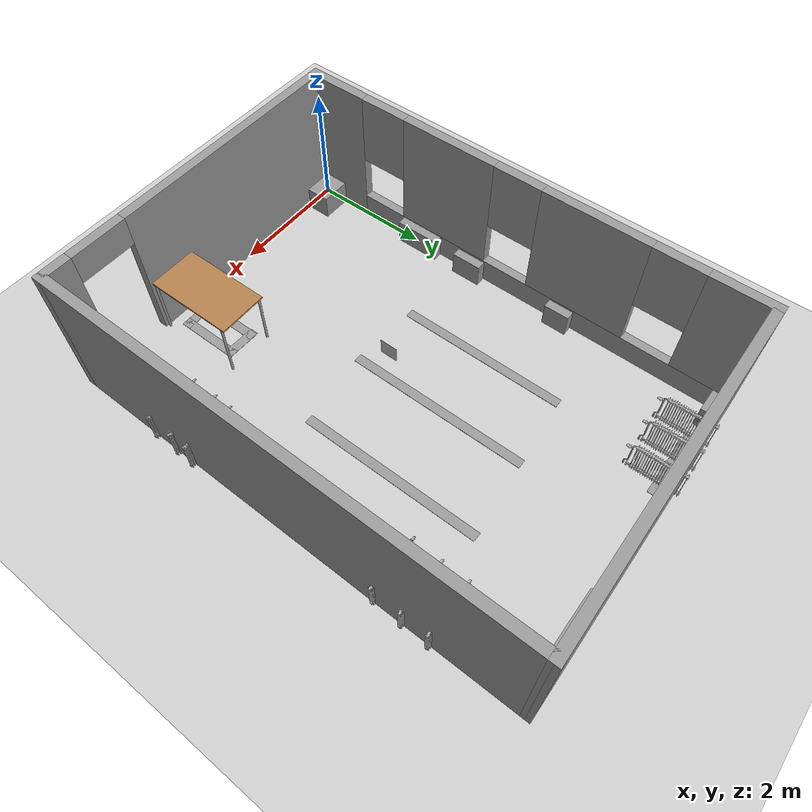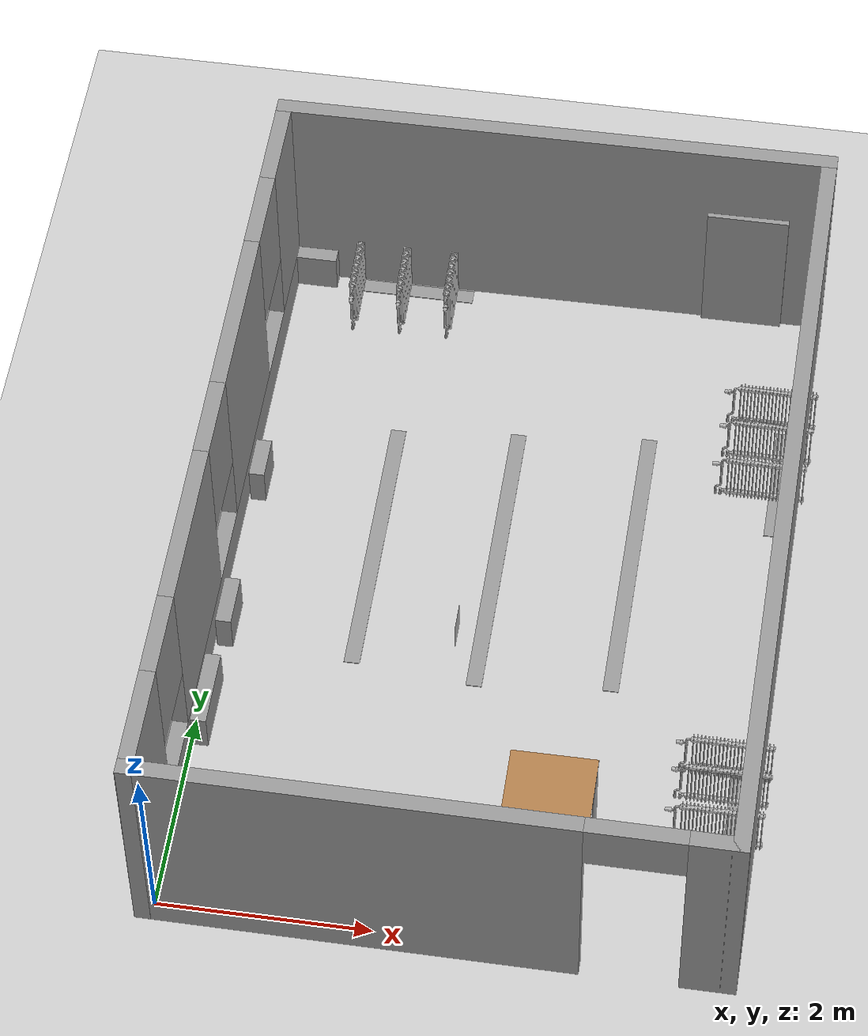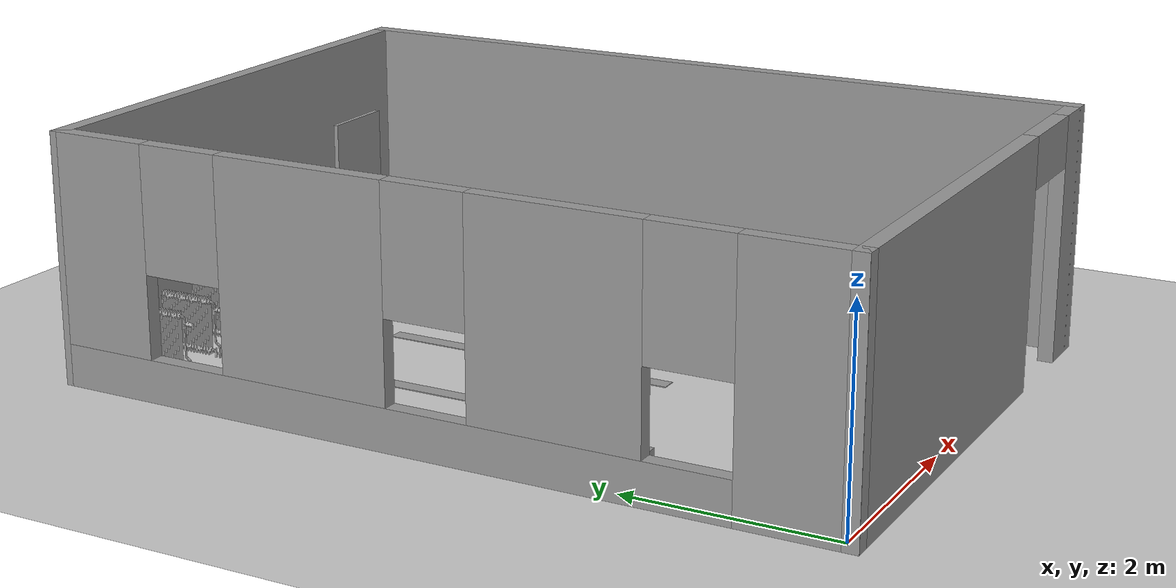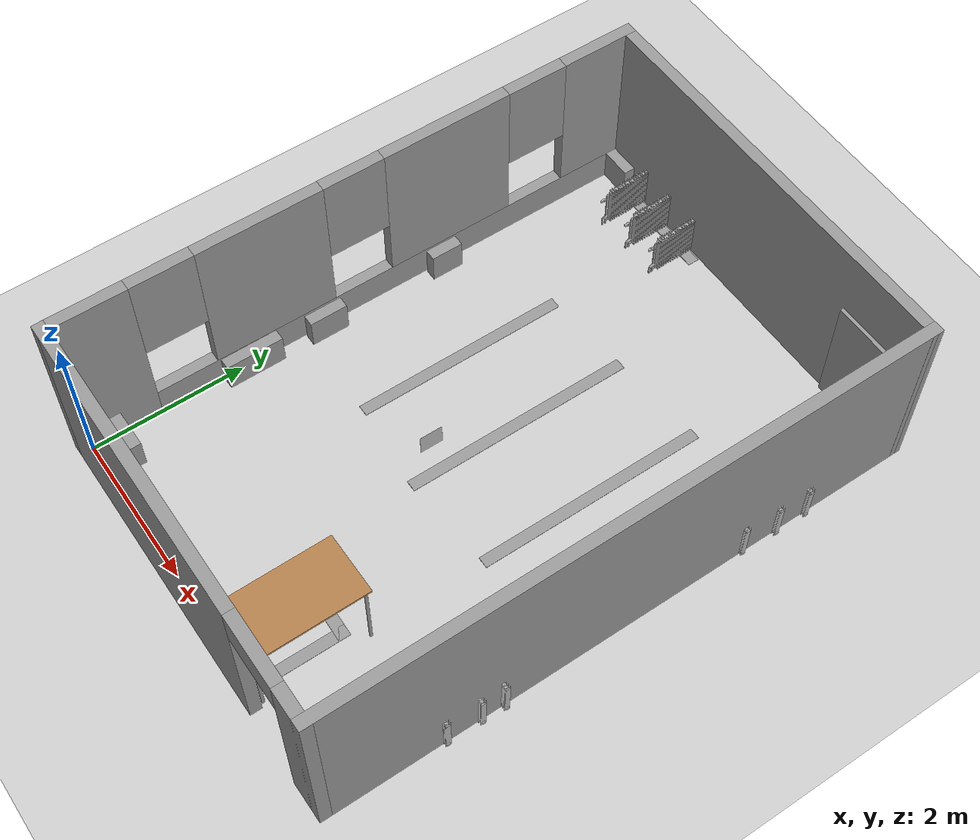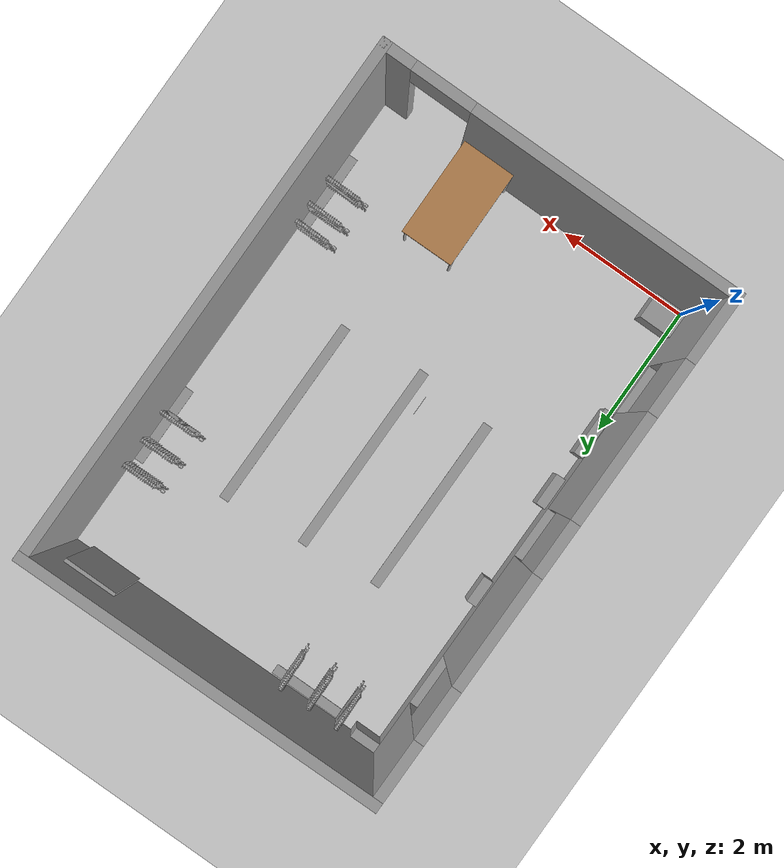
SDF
<sdf version="1.7">
 <world name="default">
  <light name="sun" type="directional">
   <pose>0 0 10 0 -0 0</pose>
   <diffuse>0.8 0.8 0.8 1</diffuse>
   <specular>0.2 0.2 0.2 1</specular>
   <attenuation>
    <range>1000</range>
    <constant>0.9</constant>
    <linear>0.01</linear>
    <quadratic>0.001</quadratic>
   </attenuation>
   <direction>-0.5 0.1 -0.9</direction>
   <spot><inner_angle>0</inner_angle><outer_angle>0</outer_angle><falloff>0</falloff></spot>
  </light>
  <model name="ground_plane">
   <static>1</static>
   <link name="link">
    <collision name="collision">
     <geometry><plane><normal>0 0 1</normal><size>100 100</size></plane></geometry>
     <surface>
      <contact><collide_bitmask>65535</collide_bitmask></contact>
      <friction><ode><mu>100</mu><mu2>50</mu2></ode></friction>
     </surface>
    </collision>
    <visual name="visual">
     <cast_shadows>0</cast_shadows>
     <geometry><plane><normal>0 0 1</normal><size>100 100</size></plane></geometry>
     <material>
      <script><uri>file://media/materials/scripts/gazebo.material</uri><name>Gazebo/Grey</name></script>
     </material>
    </visual>
   </link>
  </model>
  <gravity>0 0 -9.8</gravity>
  <magnetic_field>6e-06 2.3e-05 -4.2e-05</magnetic_field>
  <atmosphere type="adiabatic"/>
  <physics type="ode">
   <max_step_size>0.001</max_step_size>
   <real_time_factor>1</real_time_factor>
   <real_time_update_rate>1000</real_time_update_rate>
  </physics>
  <scene><ambient>0.4 0.4 0.4 1</ambient><background>0.7 0.7 0.7 1</background><shadows>1</shadows></scene>
  <spherical_coordinates>
   <surface_model>EARTH_WGS84</surface_model>
   <latitude_deg>0</latitude_deg>
   <longitude_deg>0</longitude_deg>
   <elevation>0</elevation>
   <heading_deg>0</heading_deg>
  </spherical_coordinates>
  <model name="table">
   <static>1</static>
   <link name="link">
    <collision name="surface">
     <pose>0 0 1 0 -0 0</pose>
     <geometry><box><size>1.5 0.8 0.03</size></box></geometry>
     <surface><friction><ode><mu>0.6</mu><mu2>0.6</mu2></ode></friction></surface>
    </collision>
    <visual name="visual1">
     <pose>0 0 1 0 -0 0</pose>
     <geometry><box><size>1.5 0.8 0.03</size></box></geometry>
     <material>
      <script><uri>file://media/materials/scripts/gazebo.material</uri><name>Gazebo/Wood</name></script>
     </material>
    </visual>
    <collision name="front_left_leg">
     <pose>0.68 0.38 0.5 0 -0 0</pose>
     <geometry><cylinder><radius>0.02</radius><length>1</length></cylinder></geometry>
    </collision>
    <visual name="front_left_leg">
     <pose>0.68 0.38 0.5 0 -0 0</pose>
     <geometry><cylinder><radius>0.02</radius><length>1</length></cylinder></geometry>
     <material>
      <script><uri>file://media/materials/scripts/gazebo.material</uri><name>Gazebo/Grey</name></script>
     </material>
    </visual>
    <collision name="front_right_leg">
     <pose>0.68 -0.38 0.5 0 -0 0</pose>
     <geometry><cylinder><radius>0.02</radius><length>1</length></cylinder></geometry>
    </collision>
    <visual name="front_right_leg">
     <pose>0.68 -0.38 0.5 0 -0 0</pose>
     <geometry><cylinder><radius>0.02</radius><length>1</length></cylinder></geometry>
     <material>
      <script><uri>file://media/materials/scripts/gazebo.material</uri><name>Gazebo/Grey</name></script>
     </material>
    </visual>
    <collision name="back_right_leg">
     <pose>-0.68 -0.38 0.5 0 -0 0</pose>
     <geometry><cylinder><radius>0.02</radius><length>1</length></cylinder></geometry>
    </collision>
    <visual name="back_right_leg">
     <pose>-0.68 -0.38 0.5 0 -0 0</pose>
     <geometry><cylinder><radius>0.02</radius><length>1</length></cylinder></geometry>
     <material>
      <script><uri>file://media/materials/scripts/gazebo.material</uri><name>Gazebo/Grey</name></script>
     </material>
    </visual>
    <collision name="back_left_leg">
     <pose>-0.68 0.38 0.5 0 -0 0</pose>
     <geometry><cylinder><radius>0.02</radius><length>1</length></cylinder></geometry>
    </collision>
    <visual name="back_left_leg">
     <pose>-0.68 0.38 0.5 0 -0 0</pose>
     <geometry><cylinder><radius>0.02</radius><length>1</length></cylinder></geometry>
     <material>
      <script><uri>file://media/materials/scripts/gazebo.material</uri><name>Gazebo/Grey</name></script>
     </material>
    </visual>
   </link>
   <pose>3.44291 0.706995 0 0 0 -1.56489</pose>
  </model>
  <model name="CastIronRadiator">
   <link name="link">
    <inertial>
     <inertia>
      <ixx>8.794</ixx>
      <ixy>-6.04e-06</ixy>
      <ixz>-0.00027907</ixz>
      <iyy>6.32668</iyy>
      <iyz>-3.26e-06</iyz>
      <izz>3.17141</izz>
     </inertia>
     <mass>145.789</mass>
    </inertial>
    <visual name="radiator_visual">
     <geometry>
      <mesh>
       <uri>https://fuel.ignitionrobotics.org/1.0/alexssom/models/cast iron radiator/1/files/meshes/radiator.dae</uri>
      </mesh>
     </geometry>
     <plugin name="ignition::gazebo::systems::Thermal" filename="ignition-gazebo-thermal-system">
      <temperature>325.0</temperature>
     </plugin>
     <material><shader type="pixel"/></material>
    </visual>
    <collision name="radiator_collision">
     <geometry>
      <mesh>
       <uri>/home/johnerzz/.ignition/fuel/fuel.ignitionrobotics.org/alexssom/models/cast iron radiator/1/meshes/collision.stl</uri>
       <scale>1 1 1</scale>
      </mesh>
     </geometry>
     <surface>
      <friction>
       <ode><mu>1</mu><mu2>1</mu2><fdir1>0 0 0</fdir1><slip1>0</slip1><slip2>0</slip2></ode>
       <torsional>
        <coefficient>1</coefficient>
        <patch_radius>0</patch_radius>
        <surface_radius>0</surface_radius>
        <use_patch_radius>1</use_patch_radius>
        <ode><slip>0</slip></ode>
       </torsional>
      </friction>
      <bounce><restitution_coefficient>0</restitution_coefficient><threshold>1e+06</threshold></bounce>
      <contact>
       <collide_without_contact>0</collide_without_contact>
       <collide_without_contact_bitmask>1</collide_without_contact_bitmask>
       <collide_bitmask>1</collide_bitmask>
       <ode>
        <soft_cfm>0</soft_cfm>
        <soft_erp>0.2</soft_erp>
        <kp>1e+13</kp>
        <kd>1</kd>
        <max_vel>0.01</max_vel>
        <min_depth>0</min_depth>
       </ode>
       <bullet>
        <split_impulse>1</split_impulse>
        <split_impulse_penetration_threshold>-0.01</split_impulse_penetration_threshold>
        <soft_cfm>0</soft_cfm>
        <soft_erp>0.2</soft_erp>
        <kp>1e+13</kp>
        <kd>1</kd>
       </bullet>
      </contact>
     </surface>
    </collision>
   </link>
   <static>1</static>
   <pose>4.99022 6.22706 0 0 -0 0</pose>
  </model>
  <model name="CastIronRadiator_0">
   <link name="link">
    <inertial>
     <inertia>
      <ixx>8.794</ixx>
      <ixy>-6.04e-06</ixy>
      <ixz>-0.00027907</ixz>
      <iyy>6.32668</iyy>
      <iyz>-3.26e-06</iyz>
      <izz>3.17141</izz>
     </inertia>
     <mass>145.789</mass>
    </inertial>
    <visual name="radiator_visual">
     <geometry>
      <mesh>
       <uri>https://fuel.ignitionrobotics.org/1.0/alexssom/models/cast iron radiator/1/files/meshes/radiator.dae</uri>
      </mesh>
     </geometry>
     <plugin name="ignition::gazebo::systems::Thermal" filename="ignition-gazebo-thermal-system">
      <temperature>325.0</temperature>
     </plugin>
     <material><shader type="pixel"/></material>
    </visual>
    <collision name="radiator_collision">
     <geometry>
      <mesh>
       <uri>/home/johnerzz/.ignition/fuel/fuel.ignitionrobotics.org/alexssom/models/cast iron radiator/1/meshes/collision.stl</uri>
       <scale>1 1 1</scale>
      </mesh>
     </geometry>
     <surface>
      <friction>
       <ode><mu>1</mu><mu2>1</mu2><fdir1>0 0 0</fdir1><slip1>0</slip1><slip2>0</slip2></ode>
       <torsional>
        <coefficient>1</coefficient>
        <patch_radius>0</patch_radius>
        <surface_radius>0</surface_radius>
        <use_patch_radius>1</use_patch_radius>
        <ode><slip>0</slip></ode>
       </torsional>
      </friction>
      <bounce><restitution_coefficient>0</restitution_coefficient><threshold>1e+06</threshold></bounce>
      <contact>
       <collide_without_contact>0</collide_without_contact>
       <collide_without_contact_bitmask>1</collide_without_contact_bitmask>
       <collide_bitmask>1</collide_bitmask>
       <ode>
        <soft_cfm>0</soft_cfm>
        <soft_erp>0.2</soft_erp>
        <kp>1e+13</kp>
        <kd>1</kd>
        <max_vel>0.01</max_vel>
        <min_depth>0</min_depth>
       </ode>
       <bullet>
        <split_impulse>1</split_impulse>
        <split_impulse_penetration_threshold>-0.01</split_impulse_penetration_threshold>
        <soft_cfm>0</soft_cfm>
        <soft_erp>0.2</soft_erp>
        <kp>1e+13</kp>
        <kd>1</kd>
       </bullet>
      </contact>
     </surface>
    </collision>
   </link>
   <static>1</static>
   <pose>4.98716 5.80395 0 0 -0 0</pose>
  </model>
  <model name="CastIronRadiator_1">
   <link name="link">
    <inertial>
     <inertia>
      <ixx>8.794</ixx>
      <ixy>-6.04e-06</ixy>
      <ixz>-0.00027907</ixz>
      <iyy>6.32668</iyy>
      <iyz>-3.26e-06</iyz>
      <izz>3.17141</izz>
     </inertia>
     <mass>145.789</mass>
    </inertial>
    <visual name="radiator_visual">
     <geometry>
      <mesh>
       <uri>https://fuel.ignitionrobotics.org/1.0/alexssom/models/cast iron radiator/1/files/meshes/radiator.dae</uri>
      </mesh>
     </geometry>
     <plugin name="ignition::gazebo::systems::Thermal" filename="ignition-gazebo-thermal-system">
      <temperature>325.0</temperature>
     </plugin>
     <material><shader type="pixel"/></material>
    </visual>
    <collision name="radiator_collision">
     <geometry>
      <mesh>
       <uri>/home/johnerzz/.ignition/fuel/fuel.ignitionrobotics.org/alexssom/models/cast iron radiator/1/meshes/collision.stl</uri>
       <scale>1 1 1</scale>
      </mesh>
     </geometry>
     <surface>
      <friction>
       <ode><mu>1</mu><mu2>1</mu2><fdir1>0 0 0</fdir1><slip1>0</slip1><slip2>0</slip2></ode>
       <torsional>
        <coefficient>1</coefficient>
        <patch_radius>0</patch_radius>
        <surface_radius>0</surface_radius>
        <use_patch_radius>1</use_patch_radius>
        <ode><slip>0</slip></ode>
       </torsional>
      </friction>
      <bounce><restitution_coefficient>0</restitution_coefficient><threshold>1e+06</threshold></bounce>
      <contact>
       <collide_without_contact>0</collide_without_contact>
       <collide_without_contact_bitmask>1</collide_without_contact_bitmask>
       <collide_bitmask>1</collide_bitmask>
       <ode>
        <soft_cfm>0</soft_cfm>
        <soft_erp>0.2</soft_erp>
        <kp>1e+13</kp>
        <kd>1</kd>
        <max_vel>0.01</max_vel>
        <min_depth>0</min_depth>
       </ode>
       <bullet>
        <split_impulse>1</split_impulse>
        <split_impulse_penetration_threshold>-0.01</split_impulse_penetration_threshold>
        <soft_cfm>0</soft_cfm>
        <soft_erp>0.2</soft_erp>
        <kp>1e+13</kp>
        <kd>1</kd>
       </bullet>
      </contact>
     </surface>
    </collision>
   </link>
   <static>1</static>
   <pose>4.98698 1.3807 0 0 -0 0</pose>
  </model>
  <model name="CastIronRadiator_1_clone">
   <link name="link">
    <inertial>
     <inertia>
      <ixx>8.794</ixx>
      <ixy>-6.04e-06</ixy>
      <ixz>-0.00027907</ixz>
      <iyy>6.32668</iyy>
      <iyz>-3.26e-06</iyz>
      <izz>3.17141</izz>
     </inertia>
     <mass>145.789</mass>
    </inertial>
    <visual name="radiator_visual">
     <geometry>
      <mesh>
       <uri>https://fuel.ignitionrobotics.org/1.0/alexssom/models/cast iron radiator/1/files/meshes/radiator.dae</uri>
      </mesh>
     </geometry>
     <plugin name="ignition::gazebo::systems::Thermal" filename="ignition-gazebo-thermal-system">
      <temperature>325.0</temperature>
     </plugin>
     <material><shader type="pixel"/></material>
    </visual>
    <collision name="radiator_collision">
     <geometry>
      <mesh>
       <uri>/home/johnerzz/.ignition/fuel/fuel.ignitionrobotics.org/alexssom/models/cast iron radiator/1/meshes/collision.stl</uri>
       <scale>1 1 1</scale>
      </mesh>
     </geometry>
     <surface>
      <friction>
       <ode><mu>1</mu><mu2>1</mu2><fdir1>0 0 0</fdir1><slip1>0</slip1><slip2>0</slip2></ode>
       <torsional>
        <coefficient>1</coefficient>
        <patch_radius>0</patch_radius>
        <surface_radius>0</surface_radius>
        <use_patch_radius>1</use_patch_radius>
        <ode><slip>0</slip></ode>
       </torsional>
      </friction>
      <bounce><restitution_coefficient>0</restitution_coefficient><threshold>1e+06</threshold></bounce>
      <contact>
       <collide_without_contact>0</collide_without_contact>
       <collide_without_contact_bitmask>1</collide_without_contact_bitmask>
       <collide_bitmask>1</collide_bitmask>
       <ode>
        <soft_cfm>0</soft_cfm>
        <soft_erp>0.2</soft_erp>
        <kp>1e+13</kp>
        <kd>1</kd>
        <max_vel>0.01</max_vel>
        <min_depth>0</min_depth>
       </ode>
       <bullet>
        <split_impulse>1</split_impulse>
        <split_impulse_penetration_threshold>-0.01</split_impulse_penetration_threshold>
        <soft_cfm>0</soft_cfm>
        <soft_erp>0.2</soft_erp>
        <kp>1e+13</kp>
        <kd>1</kd>
       </bullet>
      </contact>
     </surface>
    </collision>
   </link>
   <static>1</static>
   <pose>4.99485 1.8146 0 0 -0 0</pose>
  </model>
  <model name="CastIronRadiator_1_clone_0">
   <link name="link">
    <inertial>
     <inertia>
      <ixx>8.794</ixx>
      <ixy>-6.04e-06</ixy>
      <ixz>-0.00027907</ixz>
      <iyy>6.32668</iyy>
      <iyz>-3.26e-06</iyz>
      <izz>3.17141</izz>
     </inertia>
     <mass>145.789</mass>
    </inertial>
    <visual name="radiator_visual">
     <geometry>
      <mesh>
       <uri>https://fuel.ignitionrobotics.org/1.0/alexssom/models/cast iron radiator/1/files/meshes/radiator.dae</uri>
      </mesh>
     </geometry>
     <plugin name="ignition::gazebo::systems::Thermal" filename="ignition-gazebo-thermal-system">
      <temperature>325.0</temperature>
     </plugin>
     <material><shader type="pixel"/></material>
    </visual>
    <collision name="radiator_collision">
     <geometry>
      <mesh>
       <uri>/home/johnerzz/.ignition/fuel/fuel.ignitionrobotics.org/alexssom/models/cast iron radiator/1/meshes/collision.stl</uri>
       <scale>1 1 1</scale>
      </mesh>
     </geometry>
     <surface>
      <friction>
       <ode><mu>1</mu><mu2>1</mu2><fdir1>0 0 0</fdir1><slip1>0</slip1><slip2>0</slip2></ode>
       <torsional>
        <coefficient>1</coefficient>
        <patch_radius>0</patch_radius>
        <surface_radius>0</surface_radius>
        <use_patch_radius>1</use_patch_radius>
        <ode><slip>0</slip></ode>
       </torsional>
      </friction>
      <bounce><restitution_coefficient>0</restitution_coefficient><threshold>1e+06</threshold></bounce>
      <contact>
       <collide_without_contact>0</collide_without_contact>
       <collide_without_contact_bitmask>1</collide_without_contact_bitmask>
       <collide_bitmask>1</collide_bitmask>
       <ode>
        <soft_cfm>0</soft_cfm>
        <soft_erp>0.2</soft_erp>
        <kp>1e+13</kp>
        <kd>1</kd>
        <max_vel>0.01</max_vel>
        <min_depth>0</min_depth>
       </ode>
       <bullet>
        <split_impulse>1</split_impulse>
        <split_impulse_penetration_threshold>-0.01</split_impulse_penetration_threshold>
        <soft_cfm>0</soft_cfm>
        <soft_erp>0.2</soft_erp>
        <kp>1e+13</kp>
        <kd>1</kd>
       </bullet>
      </contact>
     </surface>
    </collision>
   </link>
   <static>1</static>
   <pose>5.00274 2.1137 0 0 -0 0</pose>
  </model>
  <model name="CastIronRadiator_1_clone_1">
   <link name="link">
    <inertial>
     <inertia>
      <ixx>8.794</ixx>
      <ixy>-6.04e-06</ixy>
      <ixz>-0.00027907</ixz>
      <iyy>6.32668</iyy>
      <iyz>-3.26e-06</iyz>
      <izz>3.17141</izz>
     </inertia>
     <mass>145.789</mass>
    </inertial>
    <visual name="radiator_visual">
     <geometry>
      <mesh>
       <uri>https://fuel.ignitionrobotics.org/1.0/alexssom/models/cast iron radiator/1/files/meshes/radiator.dae</uri>
      </mesh>
     </geometry>
     <plugin name="ignition::gazebo::systems::Thermal" filename="ignition-gazebo-thermal-system">
      <temperature>325.0</temperature>
     </plugin>
     <material><shader type="pixel"/></material>
    </visual>
    <collision name="radiator_collision">
     <geometry>
      <mesh>
       <uri>/home/johnerzz/.ignition/fuel/fuel.ignitionrobotics.org/alexssom/models/cast iron radiator/1/meshes/collision.stl</uri>
       <scale>1 1 1</scale>
      </mesh>
     </geometry>
     <surface>
      <friction>
       <ode><mu>1</mu><mu2>1</mu2><fdir1>0 0 0</fdir1><slip1>0</slip1><slip2>0</slip2></ode>
       <torsional>
        <coefficient>1</coefficient>
        <patch_radius>0</patch_radius>
        <surface_radius>0</surface_radius>
        <use_patch_radius>1</use_patch_radius>
        <ode><slip>0</slip></ode>
       </torsional>
      </friction>
      <bounce><restitution_coefficient>0</restitution_coefficient><threshold>1e+06</threshold></bounce>
      <contact>
       <collide_without_contact>0</collide_without_contact>
       <collide_without_contact_bitmask>1</collide_without_contact_bitmask>
       <collide_bitmask>1</collide_bitmask>
       <ode>
        <soft_cfm>0</soft_cfm>
        <soft_erp>0.2</soft_erp>
        <kp>1e+13</kp>
        <kd>1</kd>
        <max_vel>0.01</max_vel>
        <min_depth>0</min_depth>
       </ode>
       <bullet>
        <split_impulse>1</split_impulse>
        <split_impulse_penetration_threshold>-0.01</split_impulse_penetration_threshold>
        <soft_cfm>0</soft_cfm>
        <soft_erp>0.2</soft_erp>
        <kp>1e+13</kp>
        <kd>1</kd>
       </bullet>
      </contact>
     </surface>
    </collision>
   </link>
   <static>1</static>
   <pose>4.96853 5.33792 0 0 -0 0</pose>
  </model>
  <model name="CastIronRadiator_1_clone_2">
   <link name="link">
    <inertial>
     <inertia>
      <ixx>8.794</ixx>
      <ixy>-6.04e-06</ixy>
      <ixz>-0.00027907</ixz>
      <iyy>6.32668</iyy>
      <iyz>-3.26e-06</iyz>
      <izz>3.17141</izz>
     </inertia>
     <mass>145.789</mass>
    </inertial>
    <visual name="radiator_visual">
     <geometry>
      <mesh>
       <uri>https://fuel.ignitionrobotics.org/1.0/alexssom/models/cast iron radiator/1/files/meshes/radiator.dae</uri>
      </mesh>
     </geometry>
     <plugin name="ignition::gazebo::systems::Thermal" filename="ignition-gazebo-thermal-system">
      <temperature>325.0</temperature>
     </plugin>
     <material><shader type="pixel"/></material>
    </visual>
    <collision name="radiator_collision">
     <geometry>
      <mesh>
       <uri>/home/johnerzz/.ignition/fuel/fuel.ignitionrobotics.org/alexssom/models/cast iron radiator/1/meshes/collision.stl</uri>
       <scale>1 1 1</scale>
      </mesh>
     </geometry>
     <surface>
      <friction>
       <ode><mu>1</mu><mu2>1</mu2><fdir1>0 0 0</fdir1><slip1>0</slip1><slip2>0</slip2></ode>
       <torsional>
        <coefficient>1</coefficient>
        <patch_radius>0</patch_radius>
        <surface_radius>0</surface_radius>
        <use_patch_radius>1</use_patch_radius>
        <ode><slip>0</slip></ode>
       </torsional>
      </friction>
      <bounce><restitution_coefficient>0</restitution_coefficient><threshold>1e+06</threshold></bounce>
      <contact>
       <collide_without_contact>0</collide_without_contact>
       <collide_without_contact_bitmask>1</collide_without_contact_bitmask>
       <collide_bitmask>1</collide_bitmask>
       <ode>
        <soft_cfm>0</soft_cfm>
        <soft_erp>0.2</soft_erp>
        <kp>1e+13</kp>
        <kd>1</kd>
        <max_vel>0.01</max_vel>
        <min_depth>0</min_depth>
       </ode>
       <bullet>
        <split_impulse>1</split_impulse>
        <split_impulse_penetration_threshold>-0.01</split_impulse_penetration_threshold>
        <soft_cfm>0</soft_cfm>
        <soft_erp>0.2</soft_erp>
        <kp>1e+13</kp>
        <kd>1</kd>
       </bullet>
      </contact>
     </surface>
    </collision>
   </link>
   <static>1</static>
   <pose>0.653102 7.32634 0 0 -0 1.58731</pose>
  </model>
  <model name="CastIronRadiator_1_clone_2_clone">
   <link name="link">
    <inertial>
     <inertia>
      <ixx>8.794</ixx>
      <ixy>-6.04e-06</ixy>
      <ixz>-0.00027907</ixz>
      <iyy>6.32668</iyy>
      <iyz>-3.26e-06</iyz>
      <izz>3.17141</izz>
     </inertia>
     <mass>145.789</mass>
    </inertial>
    <visual name="radiator_visual">
     <geometry>
      <mesh>
       <uri>https://fuel.ignitionrobotics.org/1.0/alexssom/models/cast iron radiator/1/files/meshes/radiator.dae</uri>
      </mesh>
     </geometry>
     <plugin name="ignition::gazebo::systems::Thermal" filename="ignition-gazebo-thermal-system">
      <temperature>325.0</temperature>
     </plugin>
     <material><shader type="pixel"/></material>
    </visual>
    <collision name="radiator_collision">
     <geometry>
      <mesh>
       <uri>/home/johnerzz/.ignition/fuel/fuel.ignitionrobotics.org/alexssom/models/cast iron radiator/1/meshes/collision.stl</uri>
       <scale>1 1 1</scale>
      </mesh>
     </geometry>
     <surface>
      <friction>
       <ode><mu>1</mu><mu2>1</mu2><fdir1>0 0 0</fdir1><slip1>0</slip1><slip2>0</slip2></ode>
       <torsional>
        <coefficient>1</coefficient>
        <patch_radius>0</patch_radius>
        <surface_radius>0</surface_radius>
        <use_patch_radius>1</use_patch_radius>
        <ode><slip>0</slip></ode>
       </torsional>
      </friction>
      <bounce><restitution_coefficient>0</restitution_coefficient><threshold>1e+06</threshold></bounce>
      <contact>
       <collide_without_contact>0</collide_without_contact>
       <collide_without_contact_bitmask>1</collide_without_contact_bitmask>
       <collide_bitmask>1</collide_bitmask>
       <ode>
        <soft_cfm>0</soft_cfm>
        <soft_erp>0.2</soft_erp>
        <kp>1e+13</kp>
        <kd>1</kd>
        <max_vel>0.01</max_vel>
        <min_depth>0</min_depth>
       </ode>
       <bullet>
        <split_impulse>1</split_impulse>
        <split_impulse_penetration_threshold>-0.01</split_impulse_penetration_threshold>
        <soft_cfm>0</soft_cfm>
        <soft_erp>0.2</soft_erp>
        <kp>1e+13</kp>
        <kd>1</kd>
       </bullet>
      </contact>
     </surface>
    </collision>
   </link>
   <static>1</static>
   <pose>1.12217 7.34336 0 0 -0 1.58731</pose>
  </model>
  <model name="CastIronRadiator_1_clone_2_clone_0">
   <link name="link">
    <inertial>
     <inertia>
      <ixx>8.794</ixx>
      <ixy>-6.04e-06</ixy>
      <ixz>-0.00027907</ixz>
      <iyy>6.32668</iyy>
      <iyz>-3.26e-06</iyz>
      <izz>3.17141</izz>
     </inertia>
     <mass>145.789</mass>
    </inertial>
    <visual name="radiator_visual">
     <geometry>
      <mesh>
       <uri>https://fuel.ignitionrobotics.org/1.0/alexssom/models/cast iron radiator/1/files/meshes/radiator.dae</uri>
      </mesh>
     </geometry>
     <plugin name="ignition::gazebo::systems::Thermal" filename="ignition-gazebo-thermal-system">
      <temperature>325.0</temperature>
     </plugin>
     <material><shader type="pixel"/></material>
    </visual>
    <collision name="radiator_collision">
     <geometry>
      <mesh>
       <uri>/home/johnerzz/.ignition/fuel/fuel.ignitionrobotics.org/alexssom/models/cast iron radiator/1/meshes/collision.stl</uri>
       <scale>1 1 1</scale>
      </mesh>
     </geometry>
     <surface>
      <friction>
       <ode><mu>1</mu><mu2>1</mu2><fdir1>0 0 0</fdir1><slip1>0</slip1><slip2>0</slip2></ode>
       <torsional>
        <coefficient>1</coefficient>
        <patch_radius>0</patch_radius>
        <surface_radius>0</surface_radius>
        <use_patch_radius>1</use_patch_radius>
        <ode><slip>0</slip></ode>
       </torsional>
      </friction>
      <bounce><restitution_coefficient>0</restitution_coefficient><threshold>1e+06</threshold></bounce>
      <contact>
       <collide_without_contact>0</collide_without_contact>
       <collide_without_contact_bitmask>1</collide_without_contact_bitmask>
       <collide_bitmask>1</collide_bitmask>
       <ode>
        <soft_cfm>0</soft_cfm>
        <soft_erp>0.2</soft_erp>
        <kp>1e+13</kp>
        <kd>1</kd>
        <max_vel>0.01</max_vel>
        <min_depth>0</min_depth>
       </ode>
       <bullet>
        <split_impulse>1</split_impulse>
        <split_impulse_penetration_threshold>-0.01</split_impulse_penetration_threshold>
        <soft_cfm>0</soft_cfm>
        <soft_erp>0.2</soft_erp>
        <kp>1e+13</kp>
        <kd>1</kd>
       </bullet>
      </contact>
     </surface>
    </collision>
   </link>
   <static>1</static>
   <pose>1.59606 7.34992 0 0 -0 1.58731</pose>
  </model>
  <model name="unit_box_clone_0_clone">
   <link name="link">
    <inertial>
     <mass>1</mass>
     <inertia>
      <ixx>0.166667</ixx>
      <ixy>0</ixy>
      <ixz>0</ixz>
      <iyy>0.166667</iyy>
      <iyz>0</iyz>
      <izz>0.166667</izz>
     </inertia>
    </inertial>
    <visual name="visual">
     <geometry><box><size>0.795223 0.175192 1.55483</size></box></geometry>
     <material>
      <script><name>Gazebo/Grey</name><uri>file://media/materials/scripts/gazebo.material</uri></script>
      <shader type="pixel"/>
     </material>
    </visual>
    <collision name="collision">
     <geometry><box><size>0.795223 0.175192 1.55483</size></box></geometry>
     <surface>
      <friction>
       <ode><mu>1</mu><mu2>1</mu2><fdir1>0 0 0</fdir1><slip1>0</slip1><slip2>0</slip2></ode>
       <torsional>
        <coefficient>1</coefficient>
        <patch_radius>0</patch_radius>
        <surface_radius>0</surface_radius>
        <use_patch_radius>1</use_patch_radius>
        <ode><slip>0</slip></ode>
       </torsional>
      </friction>
      <bounce><restitution_coefficient>0</restitution_coefficient><threshold>1e+06</threshold></bounce>
      <contact>
       <collide_without_contact>0</collide_without_contact>
       <collide_without_contact_bitmask>1</collide_without_contact_bitmask>
       <collide_bitmask>1</collide_bitmask>
       <ode>
        <soft_cfm>0</soft_cfm>
        <soft_erp>0.2</soft_erp>
        <kp>1e+13</kp>
        <kd>1</kd>
        <max_vel>0.01</max_vel>
        <min_depth>0</min_depth>
       </ode>
       <bullet>
        <split_impulse>1</split_impulse>
        <split_impulse_penetration_threshold>-0.01</split_impulse_penetration_threshold>
        <soft_cfm>0</soft_cfm>
        <soft_erp>0.2</soft_erp>
        <kp>1e+13</kp>
        <kd>1</kd>
       </bullet>
      </contact>
     </surface>
    </collision>
   </link>
   <static>1</static>
   <pose>4.49641 7.57954 0.783798 0 -0 0</pose>
  </model>
  <model name="Apriltag36_11_00000_78">
   <link name="main">
    <pose>2.28 3.2 0.318922 0 1.57079 0</pose>
    <visual name="main_Visual">
     <geometry><box><size>0.3 0.3 0.0001</size></box></geometry>
     <material>
      <script>
       <uri>model://materials/scripts/</uri>
       <uri>model://materials/textures/</uri>
       <name>Obj/Apriltag36_11_00000</name>
      </script>
     </material>
    </visual>
   </link>
   <static>1</static>
  </model>
  <model name="LabVineyard">
   <pose>2.57371 3.76723 -0.101342 0 -0 0</pose>
   <link name="Wall_25">
    <collision name="Wall_25_Collision">
     <geometry><box><size>5.4313 0.15 2.5</size></box></geometry>
     <pose>0 0 1.25 0 -0 0</pose>
    </collision>
    <visual name="Wall_25_Visual">
     <pose>0 0 1.25 0 -0 0</pose>
     <geometry><box><size>5.4313 0.15 2.5</size></box></geometry>
     <material>
      <script><uri>file://media/materials/scripts/gazebo.material</uri><name>Gazebo/Grey</name></script>
      <ambient>1 1 1 1</ambient>
     </material>
     <meta><layer>0</layer></meta>
    </visual>
    <pose>0.008426 3.8343 0 0 -0 0.008547</pose>
   </link>
   <link name="Wall_26">
    <collision name="Wall_26_Collision">
     <geometry><box><size>7.86391 0.15 2.5</size></box></geometry>
     <pose>0 0 1.25 0 -0 0</pose>
    </collision>
    <visual name="Wall_26_Visual">
     <pose>0 0 1.25 0 -0 0</pose>
     <geometry><box><size>7.86391 0.15 2.5</size></box></geometry>
     <material>
      <script><uri>file://media/materials/scripts/gazebo.material</uri><name>Gazebo/Grey</name></script>
      <ambient>1 1 1 1</ambient>
     </material>
     <meta><layer>0</layer></meta>
    </visual>
    <pose>2.6505 -0.000255 0 0 -0 -1.57041</pose>
   </link>
   <link name="Wall_27">
    <pose>-0 -3.85287 0 0 -0 3.1399</pose>
    <visual name="Wall_27_Visual_0">
     <pose>-2.46812 0 1.25 0 -0 0</pose>
     <geometry><box><size>0.518096 0.15 2.5</size></box></geometry>
     <material>
      <script><uri>file://media/materials/scripts/gazebo.material</uri><name>Gazebo/Grey</name></script>
      <ambient>1 1 1 1</ambient>
     </material>
     <meta><layer>0</layer></meta>
    </visual>
    <collision name="Wall_27_Collision_0">
     <geometry><box><size>0.518096 0.15 2.5</size></box></geometry>
     <pose>-2.46812 0 1.25 0 -0 0</pose>
    </collision>
    <visual name="Wall_27_Visual_1">
     <pose>0.709048 0 1.25 0 -0 0</pose>
     <geometry><box><size>4.03625 0.15 2.5</size></box></geometry>
     <material>
      <script><uri>file://media/materials/scripts/gazebo.material</uri><name>Gazebo/Grey</name></script>
      <ambient>1 1 1 1</ambient>
     </material>
     <meta><layer>0</layer></meta>
    </visual>
    <collision name="Wall_27_Collision_1">
     <geometry><box><size>4.03625 0.15 2.5</size></box></geometry>
     <pose>0.709048 0 1.25 0 -0 0</pose>
    </collision>
    <visual name="Wall_27_Visual_2">
     <pose>-1.75908 0 2.25 0 -0 0</pose>
     <geometry><box><size>0.9 0.15 0.5</size></box></geometry>
     <material>
      <script><uri>file://media/materials/scripts/gazebo.material</uri><name>Gazebo/Grey</name></script>
      <ambient>1 1 1 1</ambient>
     </material>
     <meta><layer>0</layer></meta>
    </visual>
    <collision name="Wall_27_Collision_2">
     <geometry><box><size>0.9 0.15 0.5</size></box></geometry>
     <pose>-1.75908 0 2.25 0 -0 0</pose>
    </collision>
   </link>
   <link name="Wall_28">
    <pose>-2.64208 -0.018324 0 0 -0 1.56821</pose>
    <visual name="Wall_28_Visual_0">
     <pose>-3.37054 0 1.25 0 -0 0</pose>
     <geometry><box><size>1.06919 0.15 2.5</size></box></geometry>
     <material>
      <script><uri>file://media/materials/scripts/gazebo.material</uri><name>Gazebo/Grey</name></script>
      <ambient>1 1 1 1</ambient>
     </material>
     <meta><layer>0</layer></meta>
    </visual>
    <collision name="Wall_28_Collision_0">
     <geometry><box><size>1.06919 0.15 2.5</size></box></geometry>
     <pose>-3.37054 0 1.25 0 -0 0</pose>
    </collision>
    <visual name="Wall_28_Visual_1">
     <pose>0.534596 0 0.25 0 -0 0</pose>
     <geometry><box><size>6.74108 0.15 0.5</size></box></geometry>
     <material>
      <script><uri>file://media/materials/scripts/gazebo.material</uri><name>Gazebo/Grey</name></script>
      <ambient>1 1 1 1</ambient>
     </material>
     <meta><layer>0</layer></meta>
    </visual>
    <collision name="Wall_28_Collision_1">
     <geometry><box><size>6.74108 0.15 0.5</size></box></geometry>
     <pose>0.534596 0 0.25 0 -0 0</pose>
    </collision>
    <visual name="Wall_28_Visual_2">
     <pose>-1.22283 0 1.5 0 -0 0</pose>
     <geometry><box><size>1.62623 0.15 2</size></box></geometry>
     <material>
      <script><uri>file://media/materials/scripts/gazebo.material</uri><name>Gazebo/Grey</name></script>
      <ambient>1 1 1 1</ambient>
     </material>
     <meta><layer>0</layer></meta>
    </visual>
    <collision name="Wall_28_Collision_2">
     <geometry><box><size>1.62623 0.15 2</size></box></geometry>
     <pose>-1.22283 0 1.5 0 -0 0</pose>
    </collision>
    <visual name="Wall_28_Visual_3">
     <pose>1.24285 0 1.5 0 -0 0</pose>
     <geometry><box><size>1.70513 0.15 2</size></box></geometry>
     <material>
      <script><uri>file://media/materials/scripts/gazebo.material</uri><name>Gazebo/Grey</name></script>
      <ambient>1 1 1 1</ambient>
     </material>
     <meta><layer>0</layer></meta>
    </visual>
    <collision name="Wall_28_Collision_3">
     <geometry><box><size>1.70513 0.15 2</size></box></geometry>
     <pose>1.24285 0 1.5 0 -0 0</pose>
    </collision>
    <visual name="Wall_28_Visual_4">
     <pose>3.40028 0 1.5 0 -0 0</pose>
     <geometry><box><size>1.00972 0.15 2</size></box></geometry>
     <material>
      <script><uri>file://media/materials/scripts/gazebo.material</uri><name>Gazebo/Grey</name></script>
      <ambient>1 1 1 1</ambient>
     </material>
     <meta><layer>0</layer></meta>
    </visual>
    <collision name="Wall_28_Collision_4">
     <geometry><box><size>1.00972 0.15 2</size></box></geometry>
     <pose>3.40028 0 1.5 0 -0 0</pose>
    </collision>
    <visual name="Wall_28_Visual_5">
     <pose>-2.43594 0 1.9 0 -0 0</pose>
     <geometry><box><size>0.8 0.15 1.2</size></box></geometry>
     <material>
      <script><uri>file://media/materials/scripts/gazebo.material</uri><name>Gazebo/Grey</name></script>
      <ambient>1 1 1 1</ambient>
     </material>
     <meta><layer>0</layer></meta>
    </visual>
    <collision name="Wall_28_Collision_5">
     <geometry><box><size>0.8 0.15 1.2</size></box></geometry>
     <pose>-2.43594 0 1.9 0 -0 0</pose>
    </collision>
    <visual name="Wall_28_Visual_6">
     <pose>-0.009712 0 1.9 0 -0 0</pose>
     <geometry><box><size>0.8 0.15 1.2</size></box></geometry>
     <material>
      <script><uri>file://media/materials/scripts/gazebo.material</uri><name>Gazebo/Grey</name></script>
      <ambient>1 1 1 1</ambient>
     </material>
     <meta><layer>0</layer></meta>
    </visual>
    <collision name="Wall_28_Collision_6">
     <geometry><box><size>0.8 0.15 1.2</size></box></geometry>
     <pose>-0.009712 0 1.9 0 -0 0</pose>
    </collision>
    <visual name="Wall_28_Visual_7">
     <pose>2.49542 0 1.9 0 -0 0</pose>
     <geometry><box><size>0.8 0.15 1.2</size></box></geometry>
     <material>
      <script><uri>file://media/materials/scripts/gazebo.material</uri><name>Gazebo/Grey</name></script>
      <ambient>1 1 1 1</ambient>
     </material>
     <meta><layer>0</layer></meta>
    </visual>
    <collision name="Wall_28_Collision_7">
     <geometry><box><size>0.8 0.15 1.2</size></box></geometry>
     <pose>2.49542 0 1.9 0 -0 0</pose>
    </collision>
   </link>
   <link name="Wall_30">
    <collision name="Wall_30_Collision">
     <geometry><box><size>2.7881 0.15 0.1</size></box></geometry>
     <pose>0 0 0.05 0 -0 0</pose>
    </collision>
    <visual name="Wall_30_Visual">
     <pose>0 0 0.05 0 -0 0</pose>
     <geometry><box><size>2.7881 0.15 0.1</size></box></geometry>
     <material>
      <script><uri>file://media/materials/scripts/gazebo.material</uri><name>Gazebo/Grey</name></script>
      <ambient>1 1 1 1</ambient>
     </material>
     <meta><layer>0</layer></meta>
    </visual>
    <pose>-1.252 0.482626 0 0 -0 -1.5708</pose>
   </link>
   <link name="Wall_32">
    <collision name="Wall_32_Collision">
     <geometry><box><size>3 0.15 0.1</size></box></geometry>
     <pose>0 0 0.05 0 -0 0</pose>
    </collision>
    <visual name="Wall_32_Visual">
     <pose>0 0 0.05 0 -0 0</pose>
     <geometry><box><size>3 0.15 0.1</size></box></geometry>
     <material>
      <script><uri>file://media/materials/scripts/gazebo.material</uri><name>Gazebo/Grey</name></script>
      <ambient>1 1 1 1</ambient>
     </material>
     <meta><layer>0</layer></meta>
    </visual>
    <pose>-0.075 0.494626 0 0 -0 -1.5708</pose>
   </link>
   <link name="Wall_34">
    <collision name="Wall_34_Collision">
     <geometry><box><size>3 0.15 0.1</size></box></geometry>
     <pose>0 0 0.05 0 -0 0</pose>
    </collision>
    <visual name="Wall_34_Visual">
     <pose>0 0 0.05 0 -0 0</pose>
     <geometry><box><size>3 0.15 0.1</size></box></geometry>
     <material>
      <script><uri>file://media/materials/scripts/gazebo.material</uri><name>Gazebo/Grey</name></script>
      <ambient>1 1 1 1</ambient>
     </material>
     <meta><layer>0</layer></meta>
    </visual>
    <pose>1.204 0.619626 0 0 -0 -1.5708</pose>
   </link>
   <link name="Wall_37">
    <collision name="Wall_37_Collision">
     <geometry><box><size>0.400064 0.15 0.5</size></box></geometry>
     <pose>0 0 0.25 0 -0 0</pose>
    </collision>
    <visual name="Wall_37_Visual">
     <pose>0 0 0.25 0 -0 0</pose>
     <geometry><box><size>0.400064 0.15 0.5</size></box></geometry>
     <material>
      <script><uri>file://media/materials/scripts/gazebo.material</uri><name>Gazebo/Grey</name></script>
      <ambient>1 1 1 1</ambient>
     </material>
     <meta><layer>0</layer></meta>
    </visual>
    <pose>-2.36 3.66863 0 0 -0 3.14159</pose>
   </link>
   <link name="Wall_39">
    <collision name="Wall_39_Collision">
     <geometry><box><size>1.137 0.15 0.1</size></box></geometry>
     <pose>0 0 0.05 0 -0 0</pose>
    </collision>
    <visual name="Wall_39_Visual">
     <pose>0 0 0.05 0 -0 0</pose>
     <geometry><box><size>1.137 0.15 0.1</size></box></geometry>
     <material>
      <script><uri>file://media/materials/scripts/gazebo.material</uri><name>Gazebo/Grey</name></script>
      <ambient>1 1 1 1</ambient>
     </material>
     <meta><layer>0</layer></meta>
    </visual>
    <pose>-1.34829 3.65884 0 0 -0 0</pose>
   </link>
   <link name="Wall_41">
    <collision name="Wall_41_Collision">
     <geometry><box><size>1.25 0.15 0.1</size></box></geometry>
     <pose>0 0 0.05 0 -0 0</pose>
    </collision>
    <visual name="Wall_41_Visual">
     <pose>0 0 0.05 0 -0 0</pose>
     <geometry><box><size>1.25 0.15 0.1</size></box></geometry>
     <material>
      <script><uri>file://media/materials/scripts/gazebo.material</uri><name>Gazebo/Grey</name></script>
      <ambient>1 1 1 1</ambient>
     </material>
     <meta><layer>0</layer></meta>
    </visual>
    <pose>2.509 1.75163 0 0 -0 -1.5708</pose>
   </link>
   <link name="Wall_43">
    <collision name="Wall_43_Collision">
     <geometry><box><size>1.25 0.15 0.1</size></box></geometry>
     <pose>0 0 0.05 0 -0 0</pose>
    </collision>
    <visual name="Wall_43_Visual">
     <pose>0 0 0.05 0 -0 0</pose>
     <geometry><box><size>1.25 0.15 0.1</size></box></geometry>
     <material>
      <script><uri>file://media/materials/scripts/gazebo.material</uri><name>Gazebo/Grey</name></script>
      <ambient>1 1 1 1</ambient>
     </material>
     <meta><layer>0</layer></meta>
    </visual>
    <pose>2.511 -2.28237 0 0 -0 -1.5708</pose>
   </link>
   <link name="Wall_45">
    <collision name="Wall_45_Collision">
     <geometry><box><size>1.05844 0.15 0.1</size></box></geometry>
     <pose>0 0 0.05 0 -0 0</pose>
    </collision>
    <visual name="Wall_45_Visual">
     <pose>0 0 0.05 0 -0 0</pose>
     <geometry><box><size>1.05844 0.15 0.1</size></box></geometry>
     <material>
      <script><uri>file://media/materials/scripts/gazebo.material</uri><name>Gazebo/Grey</name></script>
      <ambient>1 1 1 1</ambient>
     </material>
     <meta><layer>0</layer></meta>
    </visual>
    <pose>0.616 -3.08387 0 0 -0 -1.5708</pose>
   </link>
   <link name="Wall_46">
    <collision name="Wall_46_Collision">
     <geometry><box><size>0.576738 0.15 0.1</size></box></geometry>
     <pose>0 0 0.05 0 -0 0</pose>
    </collision>
    <visual name="Wall_46_Visual">
     <pose>0 0 0.05 0 -0 0</pose>
     <geometry><box><size>0.576738 0.15 0.1</size></box></geometry>
     <material>
      <script><uri>file://media/materials/scripts/gazebo.material</uri><name>Gazebo/Grey</name></script>
      <ambient>1 1 1 1</ambient>
     </material>
     <meta><layer>0</layer></meta>
    </visual>
    <pose>0.829 -3.53837 0 0 -0 0</pose>
   </link>
   <link name="Wall_47">
    <collision name="Wall_47_Collision">
     <geometry><box><size>1.05844 0.15 0.1</size></box></geometry>
     <pose>0 0 0.05 0 -0 0</pose>
    </collision>
    <visual name="Wall_47_Visual">
     <pose>0 0 0.05 0 -0 0</pose>
     <geometry><box><size>1.05844 0.15 0.1</size></box></geometry>
     <material>
      <script><uri>file://media/materials/scripts/gazebo.material</uri><name>Gazebo/Grey</name></script>
      <ambient>1 1 1 1</ambient>
     </material>
     <meta><layer>0</layer></meta>
    </visual>
    <pose>1.042 -3.08387 0 0 -0 1.5708</pose>
   </link>
   <link name="Wall_48">
    <collision name="Wall_48_Collision">
     <geometry><box><size>0.587506 0.15 0.1</size></box></geometry>
     <pose>0 0 0.05 0 -0 0</pose>
    </collision>
    <visual name="Wall_48_Visual">
     <pose>0 0 0.05 0 -0 0</pose>
     <geometry><box><size>0.587506 0.15 0.1</size></box></geometry>
     <material>
      <script><uri>file://media/materials/scripts/gazebo.material</uri><name>Gazebo/Grey</name></script>
      <ambient>1 1 1 1</ambient>
     </material>
     <meta><layer>0</layer></meta>
    </visual>
    <pose>0.8235 -2.62387 0 0 -0 3.11643</pose>
   </link>
   <link name="Wall_50">
    <collision name="Wall_50_Collision">
     <geometry><box><size>0.419146 0.15 0.5</size></box></geometry>
     <pose>0 0 0.25 0 -0 0</pose>
    </collision>
    <visual name="Wall_50_Visual">
     <pose>0 0 0.25 0 -0 0</pose>
     <geometry><box><size>0.419146 0.15 0.5</size></box></geometry>
     <material>
      <script><uri>file://media/materials/scripts/gazebo.material</uri><name>Gazebo/Grey</name></script>
      <ambient>1 1 1 1</ambient>
     </material>
     <meta><layer>0</layer></meta>
    </visual>
    <pose>-2.467 1.05813 0 0 -0 -1.5708</pose>
   </link>
   <link name="Wall_54">
    <collision name="Wall_54_Collision">
     <geometry><box><size>0.5 0.15 0.5</size></box></geometry>
     <pose>0 0 0.25 0 -0 0</pose>
    </collision>
    <visual name="Wall_54_Visual">
     <pose>0 0 0.25 0 -0 0</pose>
     <geometry><box><size>0.5 0.15 0.5</size></box></geometry>
     <material>
      <script><uri>file://media/materials/scripts/gazebo.material</uri><name>Gazebo/Grey</name></script>
      <ambient>1 1 1 1</ambient>
     </material>
     <meta><layer>0</layer></meta>
    </visual>
    <pose>-2.467 -0.641374 0 0 -0 -1.5708</pose>
   </link>
   <link name="Wall_56">
    <collision name="Wall_56_Collision">
     <geometry><box><size>0.75 0.15 0.5</size></box></geometry>
     <pose>0 0 0.25 0 -0 0</pose>
    </collision>
    <visual name="Wall_56_Visual">
     <pose>0 0 0.25 0 -0 0</pose>
     <geometry><box><size>0.75 0.15 0.5</size></box></geometry>
     <material>
      <script><uri>file://media/materials/scripts/gazebo.material</uri><name>Gazebo/Grey</name></script>
      <ambient>1 1 1 1</ambient>
     </material>
     <meta><layer>0</layer></meta>
    </visual>
    <pose>-2.488 -1.64637 0 0 -0 -1.5708</pose>
   </link>
   <link name="Wall_58">
    <collision name="Wall_58_Collision">
     <geometry><box><size>0.624 0.4 0.5</size></box></geometry>
     <pose>0 0 0.25 0 -0 0</pose>
    </collision>
    <visual name="Wall_58_Visual">
     <pose>0 0 0.25 0 -0 0</pose>
     <geometry><box><size>0.624 0.4 0.5</size></box></geometry>
     <material>
      <script><uri>file://media/materials/scripts/gazebo.material</uri><name>Gazebo/Grey</name></script>
      <ambient>1 1 1 1</ambient>
     </material>
     <meta><layer>0</layer></meta>
    </visual>
    <pose>-2.385 -3.54037 0 0 -0 0</pose>
   </link>
   <static>1</static>
  </model>
 </world>
</sdf>
